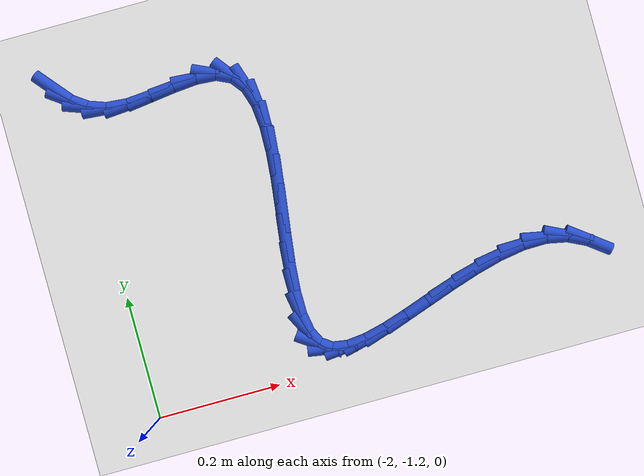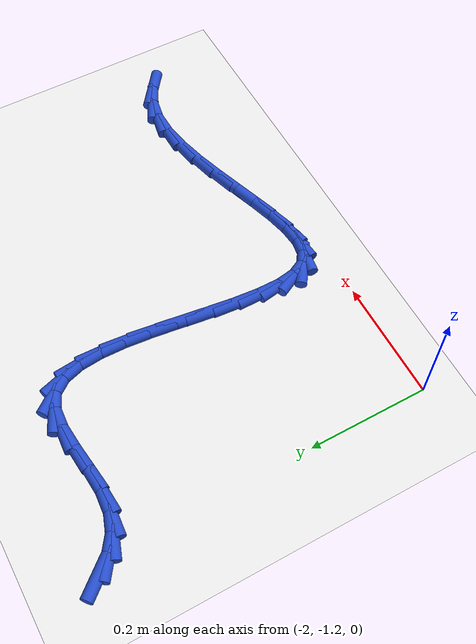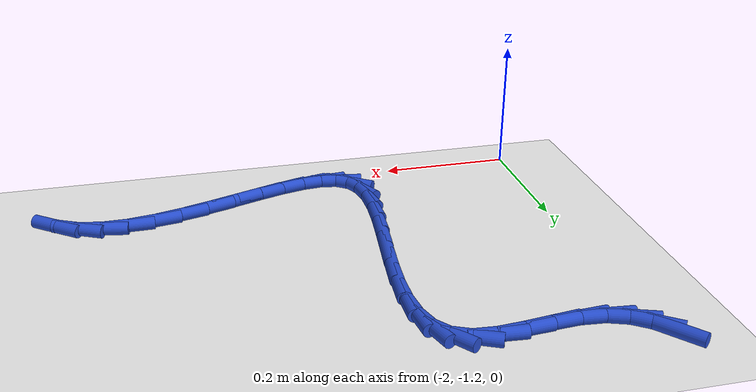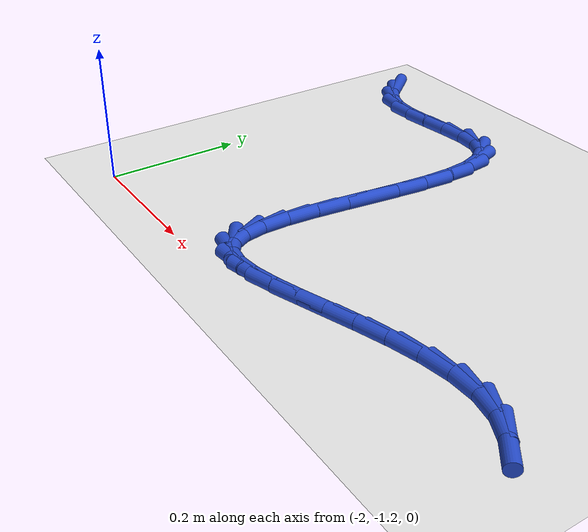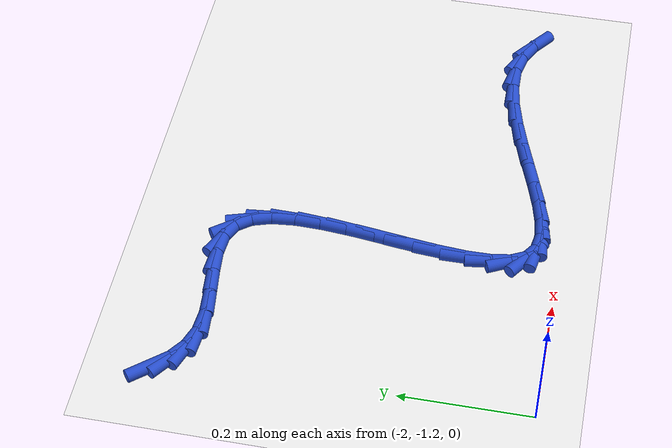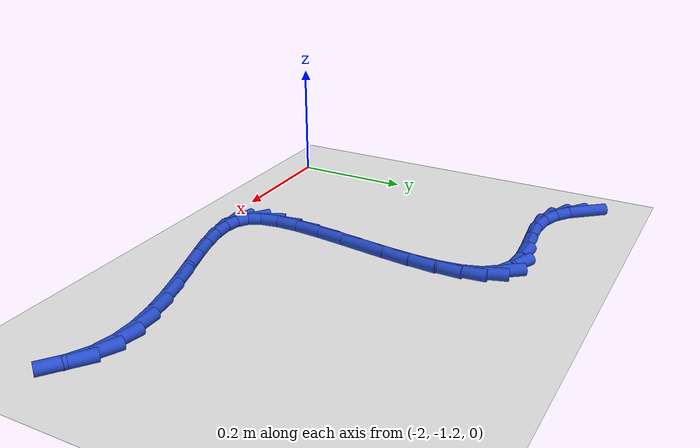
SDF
<sdf version="1.6">
 <world name="default">
  <model name="ground_plane">
   <static>1</static>
   <link name="link">
    <collision name="collision">
     <geometry><plane><normal>0 0 1</normal><size>100 100</size></plane></geometry>
     <surface><friction><ode><mu>100</mu><mu2>50</mu2></ode></friction></surface>
    </collision>
    <visual name="visual">
     <cast_shadows>0</cast_shadows>
     <geometry><plane><normal>0 0 1</normal><size>100 100</size></plane></geometry>
     <material>
      <script><uri>file://media/materials/scripts/gazebo.material</uri><name>Gazebo/WhiteGlow</name></script>
     </material>
    </visual>
   </link>
  </model>
  <model name="line">
   <link name="link_119">
    <pose>-2.0204052996596435 -0.6474470258168703 0.01 0 1.57 -0.875406187139049</pose>
    <collision name="collision">
     <geometry><cylinder><radius>0.01</radius><length>0.08</length></cylinder></geometry>
    </collision>
    <visual name="visual">
     <material>
      <script><name>Gazebo/Blue</name><uri>file://media/materials/scripts/gazebo.material</uri></script>
     </material>
     <geometry><cylinder><radius>0.01</radius><length>0.08</length></cylinder></geometry>
    </visual>
   </link>
   <link name="link_120">
    <pose>-2.0012374296452142 -0.6704180062644891 0.01 0 1.57 -0.6207527455318101</pose>
    <collision name="collision">
     <geometry><cylinder><radius>0.01</radius><length>0.08</length></cylinder></geometry>
    </collision>
    <visual name="visual">
     <material>
      <script><name>Gazebo/Blue</name><uri>file://media/materials/scripts/gazebo.material</uri></script>
     </material>
     <geometry><cylinder><radius>0.01</radius><length>0.08</length></cylinder></geometry>
    </visual>
   </link>
   <link name="link_121">
    <pose>-1.9775480933583491 -0.6873569717099735 0.01 0 1.57 -0.3418069293937271</pose>
    <collision name="collision">
     <geometry><cylinder><radius>0.01</radius><length>0.08</length></cylinder></geometry>
    </collision>
    <visual name="visual">
     <material>
      <script><name>Gazebo/Blue</name><uri>file://media/materials/scripts/gazebo.material</uri></script>
     </material>
     <geometry><cylinder><radius>0.01</radius><length>0.08</length></cylinder></geometry>
    </visual>
   </link>
   <link name="link_122">
    <pose>-1.9488347821260885 -0.6975723412080445 0.01 0 1.57 -0.08401662569553825</pose>
    <collision name="collision">
     <geometry><cylinder><radius>0.01</radius><length>0.08</length></cylinder></geometry>
    </collision>
    <visual name="visual">
     <material>
      <script><name>Gazebo/Blue</name><uri>file://media/materials/scripts/gazebo.material</uri></script>
     </material>
     <geometry><cylinder><radius>0.01</radius><length>0.08</length></cylinder></geometry>
    </visual>
   </link>
   <link name="link_123">
    <pose>-1.9146564792366385 -0.7004506625699393 0.01 0 1.57 0.07728109562027592</pose>
    <collision name="collision">
     <geometry><cylinder><radius>0.01</radius><length>0.08</length></cylinder></geometry>
    </collision>
    <visual name="visual">
     <material>
      <script><name>Gazebo/Blue</name><uri>file://media/materials/scripts/gazebo.material</uri></script>
     </material>
     <geometry><cylinder><radius>0.01</radius><length>0.08</length></cylinder></geometry>
    </visual>
   </link>
   <link name="link_124">
    <pose>-1.8762218281862264 -0.6974744632810177 0.01 0 1.57 0.12708236586003768</pose>
    <collision name="collision">
     <geometry><cylinder><radius>0.01</radius><length>0.08</length></cylinder></geometry>
    </collision>
    <visual name="visual">
     <material>
      <script><name>Gazebo/Blue</name><uri>file://media/materials/scripts/gazebo.material</uri></script>
     </material>
     <geometry><cylinder><radius>0.01</radius><length>0.08</length></cylinder></geometry>
    </visual>
   </link>
   <link name="link_125">
    <pose>-1.836531550036867 -0.6924031992110932 0.01 0 1.57 0.08675733945592208</pose>
    <collision name="collision">
     <geometry><cylinder><radius>0.01</radius><length>0.08</length></cylinder></geometry>
    </collision>
    <visual name="visual">
     <material>
      <script><name>Gazebo/Blue</name><uri>file://media/materials/scripts/gazebo.material</uri></script>
     </material>
     <geometry><cylinder><radius>0.01</radius><length>0.08</length></cylinder></geometry>
    </visual>
   </link>
   <link name="link_126">
    <pose>-1.7986764025223771 -0.6891107225360166 0.01 0 1.57 -0.07155137665195077</pose>
    <collision name="collision">
     <geometry><cylinder><radius>0.01</radius><length>0.08</length></cylinder></geometry>
    </collision>
    <visual name="visual">
     <material>
      <script><name>Gazebo/Blue</name><uri>file://media/materials/scripts/gazebo.material</uri></script>
     </material>
     <geometry><cylinder><radius>0.01</radius><length>0.08</length></cylinder></geometry>
    </visual>
   </link>
   <link name="link_127">
    <pose>-1.7657471433765701 -0.6914708854316387 0.01 0 1.57 -0.4365917155548138</pose>
    <collision name="collision">
     <geometry><cylinder><radius>0.01</radius><length>0.08</length></cylinder></geometry>
    </collision>
    <visual name="visual">
     <material>
      <script><name>Gazebo/Blue</name><uri>file://media/materials/scripts/gazebo.material</uri></script>
     </material>
     <geometry><cylinder><radius>0.01</radius><length>0.08</length></cylinder></geometry>
    </visual>
   </link>
   <link name="link_128">
    <pose>-1.7406824875416422 -0.7031666429676454 0.01 0 1.57 -0.9182922546081944</pose>
    <collision name="collision">
     <geometry><cylinder><radius>0.01</radius><length>0.08</length></cylinder></geometry>
    </collision>
    <visual name="visual">
     <material>
      <script><name>Gazebo/Blue</name><uri>file://media/materials/scripts/gazebo.material</uri></script>
     </material>
     <geometry><cylinder><radius>0.01</radius><length>0.08</length></cylinder></geometry>
    </visual>
   </link>
   <link name="link_129">
    <pose>-1.724061079777947 -0.72491776752504 0.01 0 1.57 -1.2671073956961876</pose>
    <collision name="collision">
     <geometry><cylinder><radius>0.01</radius><length>0.08</length></cylinder></geometry>
    </collision>
    <visual name="visual">
     <material>
      <script><name>Gazebo/Blue</name><uri>file://media/materials/scripts/gazebo.material</uri></script>
     </material>
     <geometry><cylinder><radius>0.01</radius><length>0.08</length></cylinder></geometry>
    </visual>
   </link>
   <link name="link_130">
    <pose>-1.7146002675617238 -0.7551070823833907 0.01 0 1.57 -1.4727706023598484</pose>
    <collision name="collision">
     <geometry><cylinder><radius>0.01</radius><length>0.08</length></cylinder></geometry>
    </collision>
    <visual name="visual">
     <material>
      <script><name>Gazebo/Blue</name><uri>file://media/materials/scripts/gazebo.material</uri></script>
     </material>
     <geometry><cylinder><radius>0.01</radius><length>0.08</length></cylinder></geometry>
    </visual>
   </link>
   <link name="link_131">
    <pose>-1.7109668761178656 -0.7920539776829767 0.01 0 1.57 1.5503142946945077</pose>
    <collision name="collision">
     <geometry><cylinder><radius>0.01</radius><length>0.08</length></cylinder></geometry>
    </collision>
    <visual name="visual">
     <material>
      <script><name>Gazebo/Blue</name><uri>file://media/materials/scripts/gazebo.material</uri></script>
     </material>
     <geometry><cylinder><radius>0.01</radius><length>0.08</length></cylinder></geometry>
    </visual>
   </link>
   <link name="link_132">
    <pose>-1.711827730671267 -0.8340778435640777 0.01 0 1.57 1.4824774581279374</pose>
    <collision name="collision">
     <geometry><cylinder><radius>0.01</radius><length>0.08</length></cylinder></geometry>
    </collision>
    <visual name="visual">
     <material>
      <script><name>Gazebo/Blue</name><uri>file://media/materials/scripts/gazebo.material</uri></script>
     </material>
     <geometry><cylinder><radius>0.01</radius><length>0.08</length></cylinder></geometry>
    </visual>
   </link>
   <link name="link_133">
    <pose>-1.7158496564468215 -0.8794980701669706 0.01 0 1.57 1.4473224145965107</pose>
    <collision name="collision">
     <geometry><cylinder><radius>0.01</radius><length>0.08</length></cylinder></geometry>
    </collision>
    <visual name="visual">
     <material>
      <script><name>Gazebo/Blue</name><uri>file://media/materials/scripts/gazebo.material</uri></script>
     </material>
     <geometry><cylinder><radius>0.01</radius><length>0.08</length></cylinder></geometry>
    </visual>
   </link>
   <link name="link_134">
    <pose>-1.721699478669423 -0.9266340476319354 0.01 0 1.57 1.4370980893315533</pose>
    <collision name="collision">
     <geometry><cylinder><radius>0.01</radius><length>0.08</length></cylinder></geometry>
    </collision>
    <visual name="visual">
     <material>
      <script><name>Gazebo/Blue</name><uri>file://media/materials/scripts/gazebo.material</uri></script>
     </material>
     <geometry><cylinder><radius>0.01</radius><length>0.08</length></cylinder></geometry>
    </visual>
   </link>
   <link name="link_135">
    <pose>-1.728044022563965 -0.9738051660992506 0.01 0 1.57 1.4504361126938268</pose>
    <collision name="collision">
     <geometry><cylinder><radius>0.01</radius><length>0.08</length></cylinder></geometry>
    </collision>
    <visual name="visual">
     <material>
      <script><name>Gazebo/Blue</name><uri>file://media/materials/scripts/gazebo.material</uri></script>
     </material>
     <geometry><cylinder><radius>0.01</radius><length>0.08</length></cylinder></geometry>
    </visual>
   </link>
   <link name="link_136">
    <pose>-1.7335501133553421 -1.0193308157091956 0.01 0 1.57 1.4919436505684658</pose>
    <collision name="collision">
     <geometry><cylinder><radius>0.01</radius><length>0.08</length></cylinder></geometry>
    </collision>
    <visual name="visual">
     <material>
      <script><name>Gazebo/Blue</name><uri>file://media/materials/scripts/gazebo.material</uri></script>
     </material>
     <geometry><cylinder><radius>0.01</radius><length>0.08</length></cylinder></geometry>
    </visual>
   </link>
   <link name="link_137">
    <pose>-1.7368845762684475 -1.061530386602049 0.01 0 1.57 -1.5662164572420958</pose>
    <collision name="collision">
     <geometry><cylinder><radius>0.01</radius><length>0.08</length></cylinder></geometry>
    </collision>
    <visual name="visual">
     <material>
      <script><name>Gazebo/Blue</name><uri>file://media/materials/scripts/gazebo.material</uri></script>
     </material>
     <geometry><cylinder><radius>0.01</radius><length>0.08</length></cylinder></geometry>
    </visual>
   </link>
   <link name="link_138">
    <pose>-1.7367142365281754 -1.0987232689180906 0.01 0 1.57 -1.4080709399755185</pose>
    <collision name="collision">
     <geometry><cylinder><radius>0.01</radius><length>0.08</length></cylinder></geometry>
    </collision>
    <visual name="visual">
     <material>
      <script><name>Gazebo/Blue</name><uri>file://media/materials/scripts/gazebo.material</uri></script>
     </material>
     <geometry><cylinder><radius>0.01</radius><length>0.08</length></cylinder></geometry>
    </visual>
   </link>
   <link name="link_139">
    <pose>-1.7317059193594193 -1.1292288527975975 0.01 0 1.57 -1.103158767323747</pose>
    <collision name="collision">
     <geometry><cylinder><radius>0.01</radius><length>0.08</length></cylinder></geometry>
    </collision>
    <visual name="visual">
     <material>
      <script><name>Gazebo/Blue</name><uri>file://media/materials/scripts/gazebo.material</uri></script>
     </material>
     <geometry><cylinder><radius>0.01</radius><length>0.08</length></cylinder></geometry>
    </visual>
   </link>
   <link name="link_140">
    <pose>-1.720526449987073 -1.1513665283808492 0.01 0 1.57 -0.6011296937199188</pose>
    <collision name="collision">
     <geometry><cylinder><radius>0.01</radius><length>0.08</length></cylinder></geometry>
    </collision>
    <visual name="visual">
     <material>
      <script><name>Gazebo/Blue</name><uri>file://media/materials/scripts/gazebo.material</uri></script>
     </material>
     <geometry><cylinder><radius>0.01</radius><length>0.08</length></cylinder></geometry>
    </visual>
   </link>
   <link name="link_141">
    <pose>-1.7021902423203452 -1.1639414359893216 0.01 0 1.57 -0.15944290259583516</pose>
    <collision name="collision">
     <geometry><cylinder><radius>0.01</radius><length>0.08</length></cylinder></geometry>
    </collision>
    <visual name="visual">
     <material>
      <script><name>Gazebo/Blue</name><uri>file://media/materials/scripts/gazebo.material</uri></script>
     </material>
     <geometry><cylinder><radius>0.01</radius><length>0.08</length></cylinder></geometry>
    </visual>
   </link>
   <link name="link_142">
    <pose>-1.6772779603539605 -1.167947527885651 0.01 0 1.57 0.09660845219342268</pose>
    <collision name="collision">
     <geometry><cylinder><radius>0.01</radius><length>0.08</length></cylinder></geometry>
    </collision>
    <visual name="visual">
     <material>
      <script><name>Gazebo/Blue</name><uri>file://media/materials/scripts/gazebo.material</uri></script>
     </material>
     <geometry><cylinder><radius>0.01</radius><length>0.08</length></cylinder></geometry>
    </visual>
   </link>
   <link name="link_143">
    <pose>-1.6468112290111512 -1.1649949928804093 0.01 0 1.57 0.232870103046067</pose>
    <collision name="collision">
     <geometry><cylinder><radius>0.01</radius><length>0.08</length></cylinder></geometry>
    </collision>
    <visual name="visual">
     <material>
      <script><name>Gazebo/Blue</name><uri>file://media/materials/scripts/gazebo.material</uri></script>
     </material>
     <geometry><cylinder><radius>0.01</radius><length>0.08</length></cylinder></geometry>
    </visual>
   </link>
   <link name="link_144">
    <pose>-1.61181169772095 -1.1566940540306714 0.01 0 1.57 0.3029920663966371</pose>
    <collision name="collision">
     <geometry><cylinder><radius>0.01</radius><length>0.08</length></cylinder></geometry>
    </collision>
    <visual name="visual">
     <material>
      <script><name>Gazebo/Blue</name><uri>file://media/materials/scripts/gazebo.material</uri></script>
     </material>
     <geometry><cylinder><radius>0.01</radius><length>0.08</length></cylinder></geometry>
    </visual>
   </link>
   <link name="link_145">
    <pose>-1.5733010159123895 -1.144654934393511 0.01 0 1.57 0.3326932916418228</pose>
    <collision name="collision">
     <geometry><cylinder><radius>0.01</radius><length>0.08</length></cylinder></geometry>
    </collision>
    <visual name="visual">
     <material>
      <script><name>Gazebo/Blue</name><uri>file://media/materials/scripts/gazebo.material</uri></script>
     </material>
     <geometry><cylinder><radius>0.01</radius><length>0.08</length></cylinder></geometry>
    </visual>
   </link>
   <link name="link_146">
    <pose>-1.532300833014502 -1.1304878570260024 0.01 0 1.57 0.3329149414571231</pose>
    <collision name="collision">
     <geometry><cylinder><radius>0.01</radius><length>0.08</length></cylinder></geometry>
    </collision>
    <visual name="visual">
     <material>
      <script><name>Gazebo/Blue</name><uri>file://media/materials/scripts/gazebo.material</uri></script>
     </material>
     <geometry><cylinder><radius>0.01</radius><length>0.08</length></cylinder></geometry>
    </visual>
   </link>
   <link name="link_147">
    <pose>-1.4898327984563202 -1.1158030449852199 0.01 0 1.57 0.30673594310754293</pose>
    <collision name="collision">
     <geometry><cylinder><radius>0.01</radius><length>0.08</length></cylinder></geometry>
    </collision>
    <visual name="visual">
     <material>
      <script><name>Gazebo/Blue</name><uri>file://media/materials/scripts/gazebo.material</uri></script>
     </material>
     <geometry><cylinder><radius>0.01</radius><length>0.08</length></cylinder></geometry>
    </visual>
   </link>
   <link name="link_148">
    <pose>-1.4469185616668758 -1.1022107213282368 0.01 0 1.57 0.25174524311734986</pose>
    <collision name="collision">
     <geometry><cylinder><radius>0.01</radius><length>0.08</length></cylinder></geometry>
    </collision>
    <visual name="visual">
     <material>
      <script><name>Gazebo/Blue</name><uri>file://media/materials/scripts/gazebo.material</uri></script>
     </material>
     <geometry><cylinder><radius>0.01</radius><length>0.08</length></cylinder></geometry>
    </visual>
   </link>
   <link name="link_149">
    <pose>-1.4045797720752018 -1.0913211091121289 0.01 0 1.57 0.16004318533586187</pose>
    <collision name="collision">
     <geometry><cylinder><radius>0.01</radius><length>0.08</length></cylinder></geometry>
    </collision>
    <visual name="visual">
     <material>
      <script><name>Gazebo/Blue</name><uri>file://media/materials/scripts/gazebo.material</uri></script>
     </material>
     <geometry><cylinder><radius>0.01</radius><length>0.08</length></cylinder></geometry>
    </visual>
   </link>
   <link name="link_150">
    <pose>-1.363838079110329 -1.084744431393968 0.01 0 1.57 0.017140756742348388</pose>
    <collision name="collision">
     <geometry><cylinder><radius>0.01</radius><length>0.08</length></cylinder></geometry>
    </collision>
    <visual name="visual">
     <material>
      <script><name>Gazebo/Blue</name><uri>file://media/materials/scripts/gazebo.material</uri></script>
     </material>
     <geometry><cylinder><radius>0.01</radius><length>0.08</length></cylinder></geometry>
    </visual>
   </link>
   <link name="link_151">
    <pose>-1.3257151322012903 -1.08409091123083 0.01 0 1.57 -0.1967903590570998</pose>
    <collision name="collision">
     <geometry><cylinder><radius>0.01</radius><length>0.08</length></cylinder></geometry>
    </collision>
    <visual name="visual">
     <material>
      <script><name>Gazebo/Blue</name><uri>file://media/materials/scripts/gazebo.material</uri></script>
     </material>
     <geometry><cylinder><radius>0.01</radius><length>0.08</length></cylinder></geometry>
    </visual>
   </link>
   <link name="link_152">
    <pose>-1.291229723253092 -1.0909662902240216 0.01 0 1.57 -0.45586452277433287</pose>
    <collision name="collision">
     <geometry><cylinder><radius>0.01</radius><length>0.08</length></cylinder></geometry>
    </collision>
    <visual name="visual">
     <material>
      <script><name>Gazebo/Blue</name><uri>file://media/materials/scripts/gazebo.material</uri></script>
     </material>
     <geometry><cylinder><radius>0.01</radius><length>0.08</length></cylinder></geometry>
    </visual>
   </link>
   <link name="link_153">
    <pose>-1.2607280715914908 -1.105921514202152 0.01 0 1.57 -0.6526572650029345</pose>
    <collision name="collision">
     <geometry><cylinder><radius>0.01</radius><length>0.08</length></cylinder></geometry>
    </collision>
    <visual name="visual">
     <material>
      <script><name>Gazebo/Blue</name><uri>file://media/materials/scripts/gazebo.material</uri></script>
     </material>
     <geometry><cylinder><radius>0.01</radius><length>0.08</length></cylinder></geometry>
    </visual>
   </link>
  </model>
 </world>
</sdf>
